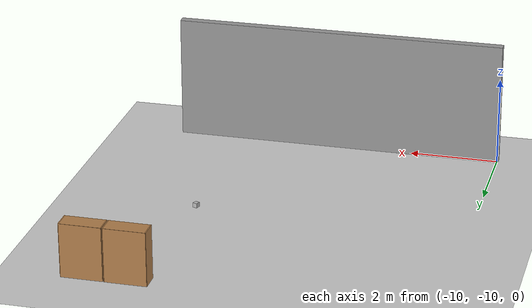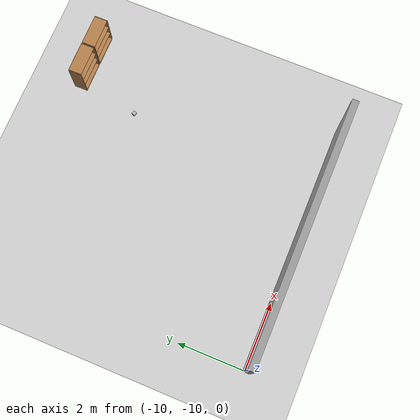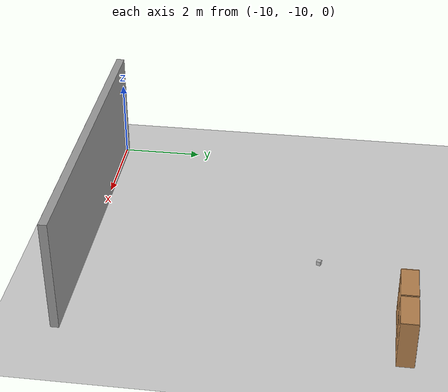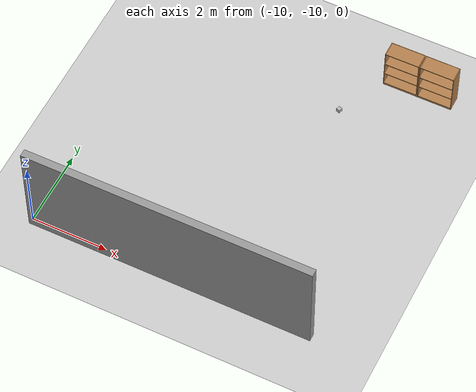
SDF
<sdf version="1.7">
 <world name="default">
  <model name="ground_plane">
   <static>1</static>
   <link name="link">
    <collision name="collision">
     <geometry><plane><normal>0 0 1</normal><size>100 100</size></plane></geometry>
     <surface><friction><ode><mu>100</mu><mu2>50</mu2></ode></friction></surface>
    </collision>
    <visual name="visual">
     <cast_shadows>0</cast_shadows>
     <geometry><plane><normal>0 0 1</normal><size>100 100</size></plane></geometry>
     <material>
      <script><uri>file://media/materials/scripts/gazebo.material</uri><name>Gazebo/Grey</name></script>
     </material>
    </visual>
   </link>
  </model>
  <model name="bookshelf_0_clone">
   <static>1</static>
   <link name="link">
    <inertial><mass>1</mass></inertial>
    <collision name="back">
     <pose>0 0.005 0.6 0 -0 0</pose>
     <geometry><box><size>0.9 0.01 1.2</size></box></geometry>
    </collision>
    <visual name="visual1">
     <pose>0 0.005 0.6 0 -0 0</pose>
     <geometry><box><size>0.9 0.01 1.2</size></box></geometry>
     <material>
      <script><uri>file://media/materials/scripts/gazebo.material</uri><name>Gazebo/Wood</name></script>
     </material>
    </visual>
    <collision name="left_side">
     <pose>0.45 -0.195 0.6 0 -0 0</pose>
     <geometry><box><size>0.02 0.4 1.2</size></box></geometry>
    </collision>
    <visual name="visual2">
     <pose>0.45 -0.195 0.6 0 -0 0</pose>
     <geometry><box><size>0.02 0.4 1.2</size></box></geometry>
     <material>
      <script><uri>file://media/materials/scripts/gazebo.material</uri><name>Gazebo/Wood</name></script>
     </material>
    </visual>
    <collision name="right_side">
     <pose>-0.45 -0.195 0.6 0 -0 0</pose>
     <geometry><box><size>0.02 0.4 1.2</size></box></geometry>
    </collision>
    <visual name="visual3">
     <pose>-0.45 -0.195 0.6 0 -0 0</pose>
     <geometry><box><size>0.02 0.4 1.2</size></box></geometry>
     <material>
      <script><uri>file://media/materials/scripts/gazebo.material</uri><name>Gazebo/Wood</name></script>
     </material>
    </visual>
    <collision name="bottom">
     <pose>0 -0.195 0.03 0 -0 0</pose>
     <geometry><box><size>0.88 0.4 0.06</size></box></geometry>
    </collision>
    <visual name="visual4">
     <pose>0 -0.195 0.03 0 -0 0</pose>
     <geometry><box><size>0.88 0.4 0.06</size></box></geometry>
     <material>
      <script><uri>file://media/materials/scripts/gazebo.material</uri><name>Gazebo/Wood</name></script>
     </material>
    </visual>
    <collision name="top">
     <pose>0 -0.195 1.19 0 -0 0</pose>
     <geometry><box><size>0.88 0.4 0.02</size></box></geometry>
    </collision>
    <visual name="visual5">
     <pose>0 -0.195 1.19 0 -0 0</pose>
     <geometry><box><size>0.88 0.4 0.02</size></box></geometry>
     <material>
      <script><uri>file://media/materials/scripts/gazebo.material</uri><name>Gazebo/Wood</name></script>
     </material>
    </visual>
    <collision name="low_shelf">
     <pose>0 -0.195 0.43 0 -0 0</pose>
     <geometry><box><size>0.88 0.4 0.02</size></box></geometry>
    </collision>
    <visual name="visual6">
     <pose>0 -0.195 0.43 0 -0 0</pose>
     <geometry><box><size>0.88 0.4 0.02</size></box></geometry>
     <material>
      <script><uri>file://media/materials/scripts/gazebo.material</uri><name>Gazebo/Wood</name></script>
     </material>
    </visual>
    <collision name="high_shelf">
     <pose>0 -0.195 0.8 0 -0 0</pose>
     <geometry><box><size>0.88 0.4 0.02</size></box></geometry>
    </collision>
    <visual name="visual7">
     <pose>0 -0.195 0.8 0 -0 0</pose>
     <geometry><box><size>0.88 0.4 0.02</size></box></geometry>
     <material>
      <script><uri>file://media/materials/scripts/gazebo.material</uri><name>Gazebo/Wood</name></script>
     </material>
    </visual>
   </link>
   <pose>-2.71584 -2.1296 0 0 -0 0</pose>
  </model>
  <model name="camera_0">
   <pose>-4.50639 -4.34106 0.868475 -3.14132 6e-06 2.79288</pose>
   <link name="link">
    <inertial>
     <mass>0.1</mass>
     <inertia>
      <ixx>0.000166667</ixx>
      <iyy>0.000166667</iyy>
      <izz>0.000166667</izz>
      <ixy>0</ixy>
      <ixz>0</ixz>
      <iyz>0</iyz>
     </inertia>
    </inertial>
    <collision name="collision"><geometry><box><size>0.1 0.1 0.1</size></box></geometry></collision>
    <visual name="visual"><geometry><box><size>0.1 0.1 0.1</size></box></geometry></visual>
    <sensor name="camera" type="camera">
     <camera>
      <horizontal_fov>1.047</horizontal_fov>
      <image><width>320</width><height>240</height></image>
      <clip><near>0.1</near><far>100</far></clip>
     </camera>
     <always_on>1</always_on>
     <update_rate>30</update_rate>
     <visualize>1</visualize>
    </sensor>
   </link>
   <static>1</static>
  </model>
  <model name="grey_wall_clone_clone">
   <static>1</static>
   <link name="link">
    <pose>0 0 1.4 0 -0 0</pose>
    <collision name="collision"><geometry><box><size>7.5 0.2 2.8</size></box></geometry></collision>
    <visual name="visual">
     <cast_shadows>0</cast_shadows>
     <geometry><box><size>7.5 0.2 2.8</size></box></geometry>
     <material>
      <script>
       <uri>model://grey_wall/materials/scripts</uri>
       <uri>model://grey_wall/materials/textures</uri>
       <name>vrc/grey_wall</name>
      </script>
     </material>
    </visual>
   </link>
   <pose>-6.27692 -10.0397 0 0 -0 0</pose>
  </model>
  <model name="bookshelf_0_clone_clone">
   <static>1</static>
   <link name="link">
    <inertial><mass>1</mass></inertial>
    <collision name="back">
     <pose>0 0.005 0.6 0 -0 0</pose>
     <geometry><box><size>0.9 0.01 1.2</size></box></geometry>
    </collision>
    <visual name="visual1">
     <pose>0 0.005 0.6 0 -0 0</pose>
     <geometry><box><size>0.9 0.01 1.2</size></box></geometry>
     <material>
      <script><uri>file://media/materials/scripts/gazebo.material</uri><name>Gazebo/Wood</name></script>
     </material>
    </visual>
    <collision name="left_side">
     <pose>0.45 -0.195 0.6 0 -0 0</pose>
     <geometry><box><size>0.02 0.4 1.2</size></box></geometry>
    </collision>
    <visual name="visual2">
     <pose>0.45 -0.195 0.6 0 -0 0</pose>
     <geometry><box><size>0.02 0.4 1.2</size></box></geometry>
     <material>
      <script><uri>file://media/materials/scripts/gazebo.material</uri><name>Gazebo/Wood</name></script>
     </material>
    </visual>
    <collision name="right_side">
     <pose>-0.45 -0.195 0.6 0 -0 0</pose>
     <geometry><box><size>0.02 0.4 1.2</size></box></geometry>
    </collision>
    <visual name="visual3">
     <pose>-0.45 -0.195 0.6 0 -0 0</pose>
     <geometry><box><size>0.02 0.4 1.2</size></box></geometry>
     <material>
      <script><uri>file://media/materials/scripts/gazebo.material</uri><name>Gazebo/Wood</name></script>
     </material>
    </visual>
    <collision name="bottom">
     <pose>0 -0.195 0.03 0 -0 0</pose>
     <geometry><box><size>0.88 0.4 0.06</size></box></geometry>
    </collision>
    <visual name="visual4">
     <pose>0 -0.195 0.03 0 -0 0</pose>
     <geometry><box><size>0.88 0.4 0.06</size></box></geometry>
     <material>
      <script><uri>file://media/materials/scripts/gazebo.material</uri><name>Gazebo/Wood</name></script>
     </material>
    </visual>
    <collision name="top">
     <pose>0 -0.195 1.19 0 -0 0</pose>
     <geometry><box><size>0.88 0.4 0.02</size></box></geometry>
    </collision>
    <visual name="visual5">
     <pose>0 -0.195 1.19 0 -0 0</pose>
     <geometry><box><size>0.88 0.4 0.02</size></box></geometry>
     <material>
      <script><uri>file://media/materials/scripts/gazebo.material</uri><name>Gazebo/Wood</name></script>
     </material>
    </visual>
    <collision name="low_shelf">
     <pose>0 -0.195 0.43 0 -0 0</pose>
     <geometry><box><size>0.88 0.4 0.02</size></box></geometry>
    </collision>
    <visual name="visual6">
     <pose>0 -0.195 0.43 0 -0 0</pose>
     <geometry><box><size>0.88 0.4 0.02</size></box></geometry>
     <material>
      <script><uri>file://media/materials/scripts/gazebo.material</uri><name>Gazebo/Wood</name></script>
     </material>
    </visual>
    <collision name="high_shelf">
     <pose>0 -0.195 0.8 0 -0 0</pose>
     <geometry><box><size>0.88 0.4 0.02</size></box></geometry>
    </collision>
    <visual name="visual7">
     <pose>0 -0.195 0.8 0 -0 0</pose>
     <geometry><box><size>0.88 0.4 0.02</size></box></geometry>
     <material>
      <script><uri>file://media/materials/scripts/gazebo.material</uri><name>Gazebo/Wood</name></script>
     </material>
    </visual>
   </link>
   <pose>-3.65011 -2.12656 0 0 -0 0</pose>
  </model>
 </world>
</sdf>
